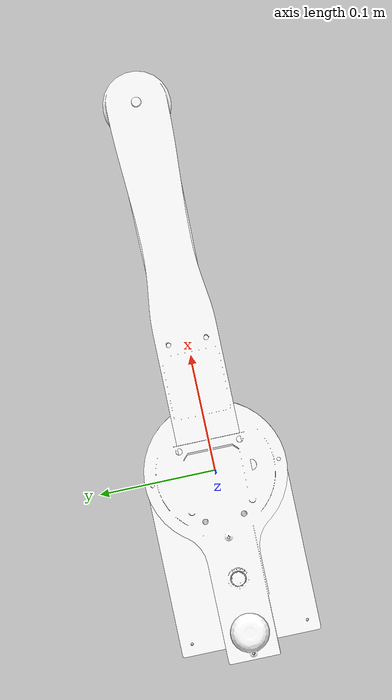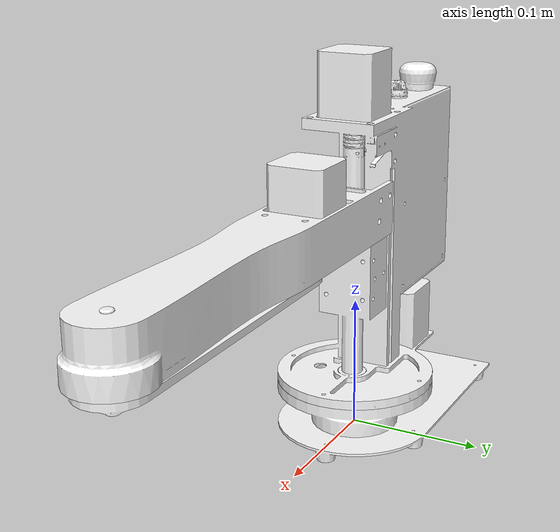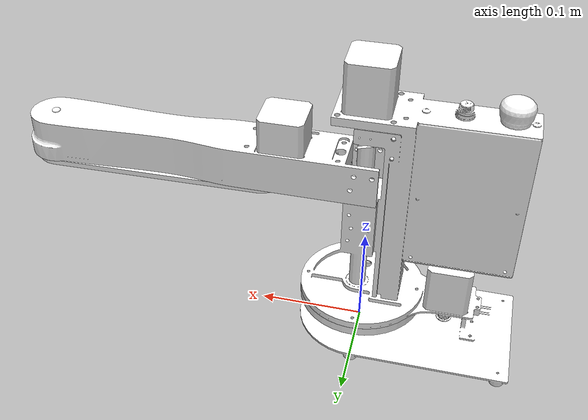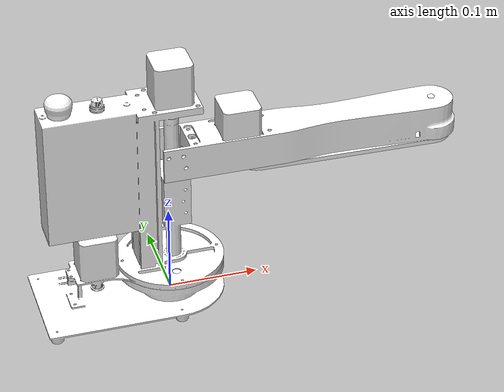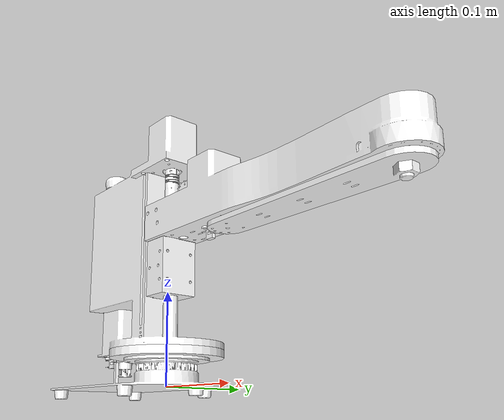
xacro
<?xml version="1.0"?>
<robot name="brio" xmlns:xacro="http://ros.org/wiki/xacro">
    <link name="base_link">
    </link>
    <joint name="link_1_joint" type="fixed">
        <parent link="base_link" />
        <child link="link_1" />
    </joint>
    <link name="link_1">
        <visual>
            <geometry>
                <mesh filename="package://brio_description/meshes/brio_l1.stl"
                    scale="0.001 0.001 0.001" />
            </geometry>
            <material name="white">
                <color rgba="1.0 1.0 1.0 1.0" />
            </material>
        </visual>
    </link>
    <joint name="link_2_joint" type="revolute">
        <origin xyz="0 0 0" rpy="0 0 0"/>
        <axis xyz="0 0 1" />
        <limit lower="${-pi}" upper="${pi}" effort="0" velocity="0" />
        <parent link="link_1" />
        <child link="link_2" />
    </joint>
    <link name="link_2">
        <visual>
            <geometry>
                <mesh filename="package://brio_description/meshes/brio_l2.stl"
                    scale="0.001 0.001 0.001" />
            </geometry>
            <material name="white">
                <color rgba="1.0 1.0 1.0 1.0" />
            </material>
        </visual>
    </link>
    <joint name="link_3_joint" type="prismatic">
        <origin xyz="0.02 0 0.16" />
        <axis xyz="0 0 -1" />
        <limit lower="0" upper="0.1" effort="0" velocity="0" />
        <parent link="link_2" />
        <child link="link_3" />
    </joint>
    <link name="link_3">
        <visual>
            <origin rpy="${pi/2} 0 0" />
            <geometry>
                <mesh filename="package://brio_description/meshes/brio_l3.stl"
                    scale="0.001 0.001 0.001" />
            </geometry>
            <material name="white">
                <color rgba="1.0 1.0 1.0 1.0" />
            </material>
        </visual>
    </link>
    <joint name="link_4_joint" type="revolute">
        <origin xyz="0.28 0 -0.012" rpy="0 0 ${pi}" />
        <axis xyz="0 0 1" />
        <limit lower="${-pi}" upper="${pi}" effort="0" velocity="0" />
        <parent link="link_3" />
        <child link="link_4" />
    </joint>
    <link name="link_4">
        <visual>
            <geometry>
                <mesh filename="package://brio_description/meshes/brio_l4.stl"
                    scale="0.001 0.001 0.001" />
            </geometry>
            <material name="white">
                <color rgba="1.0 1.0 1.0 1.0" />
            </material>
        </visual>
    </link>
    <joint name="tip_link_joint" type="fixed">
        <origin xyz="0.2 0 0" rpy="0 0 0"/>
        <parent link="link_4" />
        <child link="tip_link" />
    </joint>
    <link name="tip_link">
    </link>
</robot>
